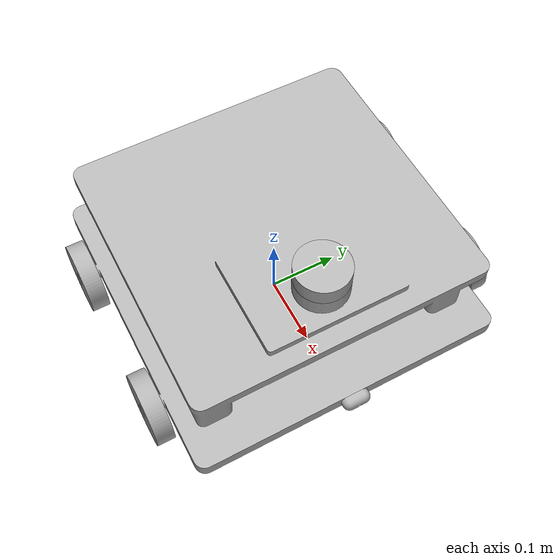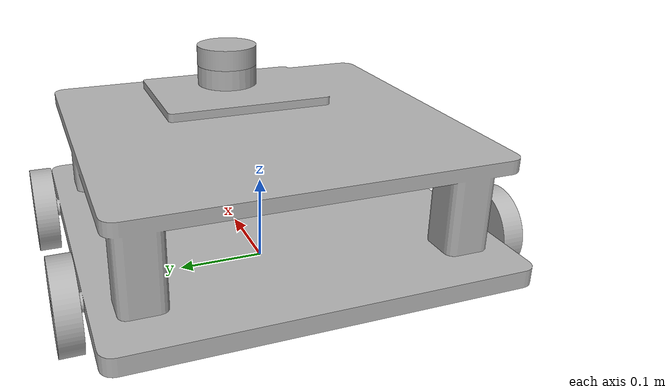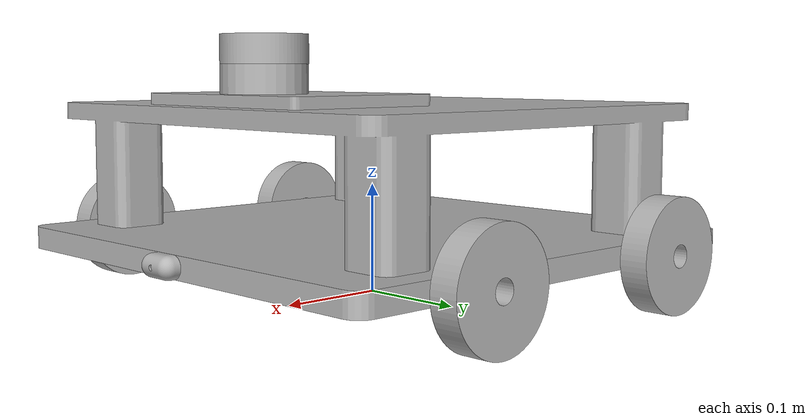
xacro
<?xml version="1.0" ?>
<robot name="steerskidrobot" xmlns:xacro="http://www.ros.org/wiki/xacro">

<xacro:include filename="$(find steerskidrobot_description)/urdf/materials.xacro" />
<xacro:include filename="$(find steerskidrobot_description)/urdf/steerskidrobot.trans" />
<xacro:include filename="$(find steerskidrobot_description)/urdf/steerskidrobot.gazebo" />
<link name="base_link">
  <inertial>
    <origin xyz="0.005345708840350011 0.00021530781650344903 0.10158998252281426" rpy="0 0 0"/>
    <mass value="21.4912052553608"/>
    <inertia ixx="0.438361" iyy="0.41795" izz="0.717503" ixy="2.7e-05" iyz="-0.000305" ixz="-0.009702"/>
  </inertial>
  <visual>
    <origin xyz="0 0 0" rpy="0 0 0"/>
    <geometry>
      <mesh filename="package://steerskidrobot_description/meshes/base_link.stl" scale="0.001 0.001 0.001"/>
    </geometry>
    <material name="silver"/>
  </visual>
  <collision>
    <origin xyz="0 0 0" rpy="0 0 0"/>
    <geometry>
      <mesh filename="package://steerskidrobot_description/meshes/base_link.stl" scale="0.001 0.001 0.001"/>
    </geometry>
  </collision>
</link>

<link name="rwr_1">
  <inertial>
    <origin xyz="-4.3576253716537394e-14 -0.012500000000000039 6.938893903907228e-18" rpy="0 0 0"/>
    <mass value="0.17530087007031012"/>
    <inertia ixx="0.000123" iyy="0.000228" izz="0.000123" ixy="0.0" iyz="0.0" ixz="-0.0"/>
  </inertial>
  <visual>
    <origin xyz="0.1125 0.23 -0.05" rpy="0 0 0"/>
    <geometry>
      <mesh filename="package://steerskidrobot_description/meshes/rwr_1.stl" scale="0.001 0.001 0.001"/>
    </geometry>
    <material name="silver"/>
  </visual>
  <collision>
    <origin xyz="0.1125 0.23 -0.05" rpy="0 0 0"/>
    <geometry>
      <mesh filename="package://steerskidrobot_description/meshes/rwr_1.stl" scale="0.001 0.001 0.001"/>
    </geometry>
  </collision>
</link>

<link name="rwf_1">
  <inertial>
    <origin xyz="4.3548498140921765e-14 -0.012500000000000039 6.938893903907228e-18" rpy="0 0 0"/>
    <mass value="0.17530087007031012"/>
    <inertia ixx="0.000123" iyy="0.000228" izz="0.000123" ixy="-0.0" iyz="0.0" ixz="0.0"/>
  </inertial>
  <visual>
    <origin xyz="-0.1125 0.23 -0.05" rpy="0 0 0"/>
    <geometry>
      <mesh filename="package://steerskidrobot_description/meshes/rwf_1.stl" scale="0.001 0.001 0.001"/>
    </geometry>
    <material name="silver"/>
  </visual>
  <collision>
    <origin xyz="-0.1125 0.23 -0.05" rpy="0 0 0"/>
    <geometry>
      <mesh filename="package://steerskidrobot_description/meshes/rwf_1.stl" scale="0.001 0.001 0.001"/>
    </geometry>
  </collision>
</link>

<link name="lwr_1">
  <inertial>
    <origin xyz="-4.3576253716537394e-14 0.012500000000000039 6.938893903907228e-18" rpy="0 0 0"/>
    <mass value="0.17530087007031012"/>
    <inertia ixx="0.000123" iyy="0.000228" izz="0.000123" ixy="-0.0" iyz="0.0" ixz="-0.0"/>
  </inertial>
  <visual>
    <origin xyz="0.1125 -0.23 -0.05" rpy="0 0 0"/>
    <geometry>
      <mesh filename="package://steerskidrobot_description/meshes/lwr_1.stl" scale="0.001 0.001 0.001"/>
    </geometry>
    <material name="silver"/>
  </visual>
  <collision>
    <origin xyz="0.1125 -0.23 -0.05" rpy="0 0 0"/>
    <geometry>
      <mesh filename="package://steerskidrobot_description/meshes/lwr_1.stl" scale="0.001 0.001 0.001"/>
    </geometry>
  </collision>
</link>

<link name="lwf_1">
  <inertial>
    <origin xyz="4.3548498140921765e-14 0.012500000000000039 6.938893903907228e-18" rpy="0 0 0"/>
    <mass value="0.17530087007031012"/>
    <inertia ixx="0.000123" iyy="0.000228" izz="0.000123" ixy="0.0" iyz="0.0" ixz="0.0"/>
  </inertial>
  <visual>
    <origin xyz="-0.1125 -0.23 -0.05" rpy="0 0 0"/>
    <geometry>
      <mesh filename="package://steerskidrobot_description/meshes/lwf_1.stl" scale="0.001 0.001 0.001"/>
    </geometry>
    <material name="silver"/>
  </visual>
  <collision>
    <origin xyz="-0.1125 -0.23 -0.05" rpy="0 0 0"/>
    <geometry>
      <mesh filename="package://steerskidrobot_description/meshes/lwf_1.stl" scale="0.001 0.001 0.001"/>
    </geometry>
  </collision>
</link>

<link name="lidar_1">
  <inertial>
    <origin xyz="2.7755575615628914e-17 1.544006160032542e-17 0.012500000000000011" rpy="0 0 0"/>
    <mass value="0.8670059413129639"/>
    <inertia ixx="0.00035" iyy="0.00035" izz="0.00061" ixy="-0.0" iyz="-0.0" ixz="0.0"/>
  </inertial>
  <visual>
    <origin xyz="-0.125 -0.0 -0.21" rpy="0 0 0"/>
    <geometry>
      <mesh filename="package://steerskidrobot_description/meshes/lidar_1.stl" scale="0.001 0.001 0.001"/>
    </geometry>
    <material name="silver"/>
  </visual>
  <collision>
    <origin xyz="-0.125 -0.0 -0.21" rpy="0 0 0"/>
    <geometry>
      <mesh filename="package://steerskidrobot_description/meshes/lidar_1.stl" scale="0.001 0.001 0.001"/>
    </geometry>
  </collision>
</link>

<link name="camera_1">
  <inertial>
    <origin xyz="0.006359579529667786 7.60856449736952e-15 6.938893903907228e-18" rpy="0 0 0"/>
    <mass value="0.06883712543290932"/>
    <inertia ixx="9e-06" iyy="3e-06" izz="8e-06" ixy="-0.0" iyz="-0.0" ixz="-0.0"/>
  </inertial>
  <visual>
    <origin xyz="-0.225 -0.0 -0.05" rpy="0 0 0"/>
    <geometry>
      <mesh filename="package://steerskidrobot_description/meshes/camera_1.stl" scale="0.001 0.001 0.001"/>
    </geometry>
    <material name="silver"/>
  </visual>
  <collision>
    <origin xyz="-0.225 -0.0 -0.05" rpy="0 0 0"/>
    <geometry>
      <mesh filename="package://steerskidrobot_description/meshes/camera_1.stl" scale="0.001 0.001 0.001"/>
    </geometry>
  </collision>
</link>

<joint name="rev1" type="continuous">
  <origin xyz="-0.1125 -0.23 0.05" rpy="0 0 0"/>
  <parent link="base_link"/>
  <child link="rwr_1"/>
  <axis xyz="0.0 -1.0 0.0"/>
</joint>

<joint name="rev2" type="continuous">
  <origin xyz="0.1125 -0.23 0.05" rpy="0 0 0"/>
  <parent link="base_link"/>
  <child link="rwf_1"/>
  <axis xyz="0.0 -1.0 0.0"/>
</joint>

<joint name="rev3" type="continuous">
  <origin xyz="-0.1125 0.23 0.05" rpy="0 0 0"/>
  <parent link="base_link"/>
  <child link="lwr_1"/>
  <axis xyz="0.0 1.0 0.0"/>
</joint>

<joint name="rev5" type="continuous">
  <origin xyz="0.1125 0.23 0.05" rpy="0 0 0"/>
  <parent link="base_link"/>
  <child link="lwf_1"/>
  <axis xyz="0.0 1.0 0.0"/>
</joint>

<joint name="rigid1" type="fixed">
  <origin xyz="0.125 0.0 0.21" rpy="0 0 0"/>
  <parent link="base_link"/>
  <child link="lidar_1"/>
</joint>

<joint name="rigid2" type="fixed">
  <origin xyz="0.225 0.0 0.05" rpy="0 0 0"/>
  <parent link="base_link"/>
  <child link="camera_1"/>
</joint>

</robot>

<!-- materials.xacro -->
<robot name="steerskidrobot" xmlns:xacro="http://www.ros.org/wiki/xacro" >

<material name="silver">
  <color rgba="0.700 0.700 0.700 1.000"/>
</material>

</robot>

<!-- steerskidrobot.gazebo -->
<robot name="steerskidrobot" xmlns:xacro="http://www.ros.org/wiki/xacro" >

<xacro:property name="body_color" value="Gazebo/Silver" />

<gazebo>
  <plugin name="control" filename="libgazebo_ros_control.so"/>
</gazebo>
<gazebo reference="base_link">
  <material>${body_color}</material>
  <mu1>0.2</mu1>
  <mu2>0.2</mu2>
  <selfCollide>true</selfCollide>
  <gravity>true</gravity>
</gazebo>

<gazebo reference="rwr_1">
  <material>${body_color}</material>
  <mu1>0.2</mu1>
  <mu2>0.2</mu2>
  <selfCollide>true</selfCollide>
</gazebo>

<gazebo reference="rwf_1">
  <material>${body_color}</material>
  <mu1>0.2</mu1>
  <mu2>0.2</mu2>
  <selfCollide>true</selfCollide>
</gazebo>

<gazebo reference="lwr_1">
  <material>${body_color}</material>
  <mu1>0.2</mu1>
  <mu2>0.2</mu2>
  <selfCollide>true</selfCollide>
</gazebo>

<gazebo reference="lwf_1">
  <material>${body_color}</material>
  <mu1>0.2</mu1>
  <mu2>0.2</mu2>
  <selfCollide>true</selfCollide>
</gazebo>

<gazebo reference="lidar_1">
  <material>${body_color}</material>
  <mu1>0.2</mu1>
  <mu2>0.2</mu2>
  <selfCollide>true</selfCollide>
</gazebo>

<gazebo reference="camera_1">
  <material>${body_color}</material>
  <mu1>0.2</mu1>
  <mu2>0.2</mu2>
  <selfCollide>true</selfCollide>
</gazebo>

</robot>
